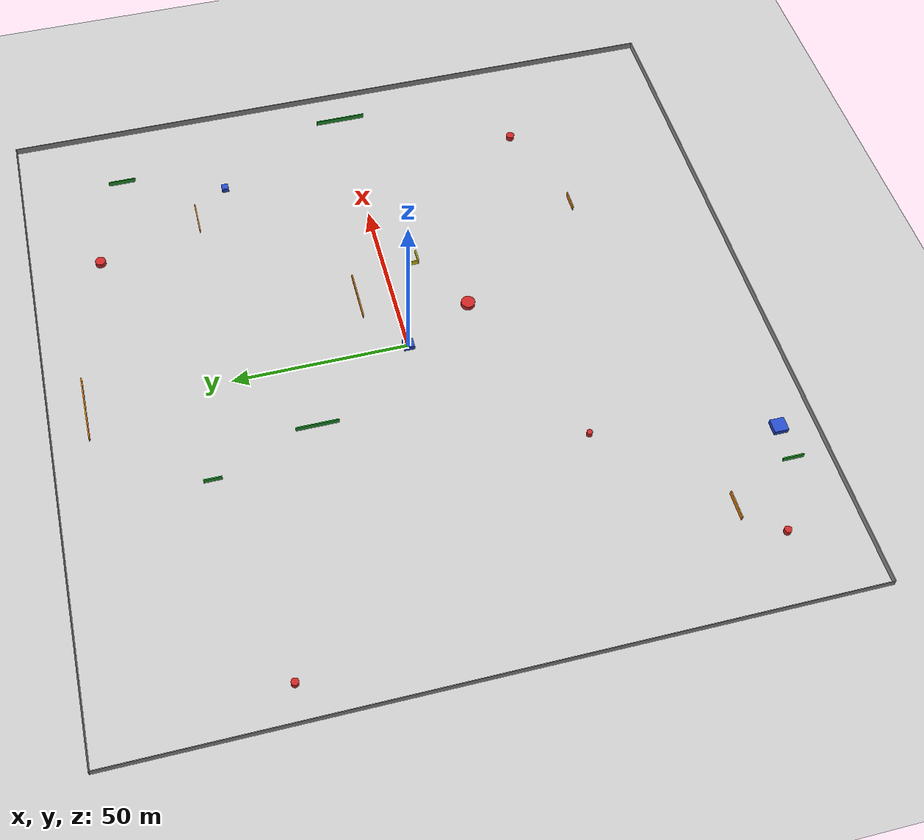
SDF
<?xml version="1.0" ?>
<sdf version="1.6">
  <world name="large_world">

    <!-- ====== 物理引擎 ====== -->
    <physics type="ode">
      <max_step_size>0.001</max_step_size>
      <real_time_factor>1.0</real_time_factor>
      <real_time_update_rate>1000</real_time_update_rate>
    </physics>

    <!-- ====== 光照 ====== -->
    <include>
      <uri>model://sun</uri>
    </include>

    <!-- ====== 地面（200×200m）====== -->
    <model name="ground_plane">
      <static>true</static>
      <link name="link">
        <collision name="collision">
          <geometry>
            <plane>
              <normal>0 0 1</normal>
              <size>200 200</size>
            </plane>
          </geometry>
          <surface>
            <friction>
              <ode>
                <mu>100</mu>
                <mu2>50</mu2>
              </ode>
            </friction>
          </surface>
        </collision>
        <visual name="visual">
          <geometry>
            <plane>
              <normal>0 0 1</normal>
              <size>200 200</size>
            </plane>
          </geometry>
          <material>
            <script>
              <uri>file://media/materials/scripts/gazebo.material</uri>
              <name>Gazebo/Grey</name>
            </script>
          </material>
        </visual>
      </link>
    </model>

    <!-- ====== 边界围墙（±100m，高 2m，厚 0.2m）====== -->

    <model name="wall_north">
      <static>true</static>
      <pose>0 100.1 1 0 0 0</pose>
      <link name="link">
        <collision name="collision"><geometry><box><size>200.4 0.2 2.0</size></box></geometry></collision>
        <visual name="visual">
          <geometry><box><size>200.4 0.2 2.0</size></box></geometry>
          <material><script><uri>file://media/materials/scripts/gazebo.material</uri><name>Gazebo/Grey</name></script></material>
        </visual>
      </link>
    </model>

    <model name="wall_south">
      <static>true</static>
      <pose>0 -100.1 1 0 0 0</pose>
      <link name="link">
        <collision name="collision"><geometry><box><size>200.4 0.2 2.0</size></box></geometry></collision>
        <visual name="visual">
          <geometry><box><size>200.4 0.2 2.0</size></box></geometry>
          <material><script><uri>file://media/materials/scripts/gazebo.material</uri><name>Gazebo/Grey</name></script></material>
        </visual>
      </link>
    </model>

    <model name="wall_east">
      <static>true</static>
      <pose>100.1 0 1 0 0 0</pose>
      <link name="link">
        <collision name="collision"><geometry><box><size>0.2 200.0 2.0</size></box></geometry></collision>
        <visual name="visual">
          <geometry><box><size>0.2 200.0 2.0</size></box></geometry>
          <material><script><uri>file://media/materials/scripts/gazebo.material</uri><name>Gazebo/Grey</name></script></material>
        </visual>
      </link>
    </model>

    <model name="wall_west">
      <static>true</static>
      <pose>-100.1 0 1 0 0 0</pose>
      <link name="link">
        <collision name="collision"><geometry><box><size>0.2 200.0 2.0</size></box></geometry></collision>
        <visual name="visual">
          <geometry><box><size>0.2 200.0 2.0</size></box></geometry>
          <material><script><uri>file://media/materials/scripts/gazebo.material</uri><name>Gazebo/Grey</name></script></material>
        </visual>
      </link>
    </model>

    <!-- ====== 西南区（靠近出生点）====== -->

    <!-- 圆柱 r=1m：(-80, -80) -->
    <model name="cyl_sw_1">
      <static>true</static>
      <pose>-80 -80 0.75 0 0 0</pose>
      <link name="link">
        <collision name="collision"><geometry><cylinder><radius>1.0</radius><length>1.5</length></cylinder></geometry></collision>
        <visual name="visual">
          <geometry><cylinder><radius>1.0</radius><length>1.5</length></cylinder></geometry>
          <material><script><uri>file://media/materials/scripts/gazebo.material</uri><name>Gazebo/Red</name></script></material>
        </visual>
      </link>
    </model>

    <!-- 横墙 8m：(-70, -70) -->
    <model name="wall_h_sw">
      <static>true</static>
      <pose>-70 -70 0.75 0 0 0</pose>
      <link name="link">
        <collision name="collision"><geometry><box><size>8.0 0.3 1.5</size></box></geometry></collision>
        <visual name="visual">
          <geometry><box><size>8.0 0.3 1.5</size></box></geometry>
          <material><script><uri>file://media/materials/scripts/gazebo.material</uri><name>Gazebo/Orange</name></script></material>
        </visual>
      </link>
    </model>

    <!-- 竖墙 6m：(-60, -90) -->
    <model name="wall_v_sw">
      <static>true</static>
      <pose>-60 -90 0.75 0 0 0</pose>
      <link name="link">
        <collision name="collision"><geometry><box><size>0.3 6.0 1.5</size></box></geometry></collision>
        <visual name="visual">
          <geometry><box><size>0.3 6.0 1.5</size></box></geometry>
          <material><script><uri>file://media/materials/scripts/gazebo.material</uri><name>Gazebo/Green</name></script></material>
        </visual>
      </link>
    </model>

    <!-- ====== 中心区 ====== -->

    <!-- 大箱子 3×3m：(0, 0) -->
    <model name="box_center">
      <static>true</static>
      <pose>0 0 0.75 0 0 0</pose>
      <link name="link">
        <collision name="collision"><geometry><box><size>3.0 3.0 1.5</size></box></geometry></collision>
        <visual name="visual">
          <geometry><box><size>3.0 3.0 1.5</size></box></geometry>
          <material><script><uri>file://media/materials/scripts/gazebo.material</uri><name>Gazebo/Blue</name></script></material>
        </visual>
      </link>
    </model>

    <!-- 长横墙 15m：(20, 10) -->
    <model name="wall_h_center">
      <static>true</static>
      <pose>20 10 0.75 0 0 0</pose>
      <link name="link">
        <collision name="collision"><geometry><box><size>15.0 0.3 1.5</size></box></geometry></collision>
        <visual name="visual">
          <geometry><box><size>15.0 0.3 1.5</size></box></geometry>
          <material><script><uri>file://media/materials/scripts/gazebo.material</uri><name>Gazebo/Orange</name></script></material>
        </visual>
      </link>
    </model>

    <!-- 长竖墙 12m：(-20, 30) -->
    <model name="wall_v_center">
      <static>true</static>
      <pose>-20 30 0.75 0 0 0</pose>
      <link name="link">
        <collision name="collision"><geometry><box><size>0.3 12.0 1.5</size></box></geometry></collision>
        <visual name="visual">
          <geometry><box><size>0.3 12.0 1.5</size></box></geometry>
          <material><script><uri>file://media/materials/scripts/gazebo.material</uri><name>Gazebo/Green</name></script></material>
        </visual>
      </link>
    </model>

    <!-- 大圆柱 r=2m：(10, -20) -->
    <model name="cyl_center">
      <static>true</static>
      <pose>10 -20 0.75 0 0 0</pose>
      <link name="link">
        <collision name="collision"><geometry><cylinder><radius>2.0</radius><length>1.5</length></cylinder></geometry></collision>
        <visual name="visual">
          <geometry><cylinder><radius>2.0</radius><length>1.5</length></cylinder></geometry>
          <material><script><uri>file://media/materials/scripts/gazebo.material</uri><name>Gazebo/Red</name></script></material>
        </visual>
      </link>
    </model>

    <!-- L形障碍：(30, -10) -->
    <model name="l_shape">
      <static>true</static>
      <pose>30 -10 0.75 0 0 0</pose>
      <link name="link">
        <!-- 东西臂 -->
        <collision name="col_h"><pose>0 0 0 0 0 0</pose><geometry><box><size>4.0 0.3 1.5</size></box></geometry></collision>
        <visual name="vis_h"><pose>0 0 0 0 0 0</pose><geometry><box><size>4.0 0.3 1.5</size></box></geometry>
          <material><script><uri>file://media/materials/scripts/gazebo.material</uri><name>Gazebo/Yellow</name></script></material>
        </visual>
        <!-- 南北臂 -->
        <collision name="col_v"><pose>-1.85 2.0 0 0 0 0</pose><geometry><box><size>0.3 4.0 1.5</size></box></geometry></collision>
        <visual name="vis_v"><pose>-1.85 2.0 0 0 0 0</pose><geometry><box><size>0.3 4.0 1.5</size></box></geometry>
          <material><script><uri>file://media/materials/scripts/gazebo.material</uri><name>Gazebo/Yellow</name></script></material>
        </visual>
      </link>
    </model>

    <!-- ====== 东北区 ====== -->

    <!-- 横墙 10m：(60, 50) -->
    <model name="wall_h_ne">
      <static>true</static>
      <pose>60 50 0.75 0 0 0</pose>
      <link name="link">
        <collision name="collision"><geometry><box><size>10.0 0.3 1.5</size></box></geometry></collision>
        <visual name="visual">
          <geometry><box><size>10.0 0.3 1.5</size></box></geometry>
          <material><script><uri>file://media/materials/scripts/gazebo.material</uri><name>Gazebo/Orange</name></script></material>
        </visual>
      </link>
    </model>

    <!-- 竖墙 8m：(80, 70) -->
    <model name="wall_v_ne">
      <static>true</static>
      <pose>80 70 0.75 0 0 0</pose>
      <link name="link">
        <collision name="collision"><geometry><box><size>0.3 8.0 1.5</size></box></geometry></collision>
        <visual name="visual">
          <geometry><box><size>0.3 8.0 1.5</size></box></geometry>
          <material><script><uri>file://media/materials/scripts/gazebo.material</uri><name>Gazebo/Green</name></script></material>
        </visual>
      </link>
    </model>

    <!-- 圆柱 r=1.5m：(50, 80) -->
    <model name="cyl_ne">
      <static>true</static>
      <pose>50 80 0.75 0 0 0</pose>
      <link name="link">
        <collision name="collision"><geometry><cylinder><radius>1.5</radius><length>1.5</length></cylinder></geometry></collision>
        <visual name="visual">
          <geometry><cylinder><radius>1.5</radius><length>1.5</length></cylinder></geometry>
          <material><script><uri>file://media/materials/scripts/gazebo.material</uri><name>Gazebo/Red</name></script></material>
        </visual>
      </link>
    </model>

    <!-- 箱子 2×2m：(70, 40) -->
    <model name="box_ne">
      <static>true</static>
      <pose>70 40 0.75 0 0 0</pose>
      <link name="link">
        <collision name="collision"><geometry><box><size>2.0 2.0 1.5</size></box></geometry></collision>
        <visual name="visual">
          <geometry><box><size>2.0 2.0 1.5</size></box></geometry>
          <material><script><uri>file://media/materials/scripts/gazebo.material</uri><name>Gazebo/Blue</name></script></material>
        </visual>
      </link>
    </model>

    <!-- ====== 边缘区 ====== -->

    <!-- 长横墙 20m：(0, 90) 靠近北边界 -->
    <model name="wall_h_north_edge">
      <static>true</static>
      <pose>0 90 0.75 0 0 0</pose>
      <link name="link">
        <collision name="collision"><geometry><box><size>20.0 0.3 1.5</size></box></geometry></collision>
        <visual name="visual">
          <geometry><box><size>20.0 0.3 1.5</size></box></geometry>
          <material><script><uri>file://media/materials/scripts/gazebo.material</uri><name>Gazebo/Orange</name></script></material>
        </visual>
      </link>
    </model>

    <!-- 长竖墙 15m：(90, 0) 靠近东边界 -->
    <model name="wall_v_east_edge">
      <static>true</static>
      <pose>90 0 0.75 0 0 0</pose>
      <link name="link">
        <collision name="collision"><geometry><box><size>0.3 15.0 1.5</size></box></geometry></collision>
        <visual name="visual">
          <geometry><box><size>0.3 15.0 1.5</size></box></geometry>
          <material><script><uri>file://media/materials/scripts/gazebo.material</uri><name>Gazebo/Green</name></script></material>
        </visual>
      </link>
    </model>

    <!-- 圆柱 r=1m：(-90, 50) 靠近西边界 -->
    <model name="cyl_west_edge">
      <static>true</static>
      <pose>-90 50 0.75 0 0 0</pose>
      <link name="link">
        <collision name="collision"><geometry><cylinder><radius>1.0</radius><length>1.5</length></cylinder></geometry></collision>
        <visual name="visual">
          <geometry><cylinder><radius>1.0</radius><length>1.5</length></cylinder></geometry>
          <material><script><uri>file://media/materials/scripts/gazebo.material</uri><name>Gazebo/Red</name></script></material>
        </visual>
      </link>
    </model>

    <!-- 大箱子 4×4m：(-50, -90) 靠近南边界 -->
    <model name="box_south_edge">
      <static>true</static>
      <pose>-50 -90 0.75 0 0 0</pose>
      <link name="link">
        <collision name="collision"><geometry><box><size>4.0 4.0 1.5</size></box></geometry></collision>
        <visual name="visual">
          <geometry><box><size>4.0 4.0 1.5</size></box></geometry>
          <material><script><uri>file://media/materials/scripts/gazebo.material</uri><name>Gazebo/Blue</name></script></material>
        </visual>
      </link>
    </model>

    <!-- ====== 额外分散障碍 ====== -->

    <!-- 圆柱 r=0.8m：(-40, -40) -->
    <model name="cyl_mid_sw">
      <static>true</static>
      <pose>-40 -40 0.75 0 0 0</pose>
      <link name="link">
        <collision name="collision"><geometry><cylinder><radius>0.8</radius><length>1.5</length></cylinder></geometry></collision>
        <visual name="visual">
          <geometry><cylinder><radius>0.8</radius><length>1.5</length></cylinder></geometry>
          <material><script><uri>file://media/materials/scripts/gazebo.material</uri><name>Gazebo/Red</name></script></material>
        </visual>
      </link>
    </model>

    <!-- 横墙 6m：(40, -60) -->
    <model name="wall_h_se">
      <static>true</static>
      <pose>40 -60 0.75 0 0 0</pose>
      <link name="link">
        <collision name="collision"><geometry><box><size>6.0 0.3 1.5</size></box></geometry></collision>
        <visual name="visual">
          <geometry><box><size>6.0 0.3 1.5</size></box></geometry>
          <material><script><uri>file://media/materials/scripts/gazebo.material</uri><name>Gazebo/Orange</name></script></material>
        </visual>
      </link>
    </model>

    <!-- 竖墙 5m：(-30, 60) -->
    <model name="wall_v_nw">
      <static>true</static>
      <pose>-30 60 0.75 0 0 0</pose>
      <link name="link">
        <collision name="collision"><geometry><box><size>0.3 5.0 1.5</size></box></geometry></collision>
        <visual name="visual">
          <geometry><box><size>0.3 5.0 1.5</size></box></geometry>
          <material><script><uri>file://media/materials/scripts/gazebo.material</uri><name>Gazebo/Green</name></script></material>
        </visual>
      </link>
    </model>

    <!-- 圆柱 r=1.2m：(70, -50) -->
    <model name="cyl_se">
      <static>true</static>
      <pose>70 -50 0.75 0 0 0</pose>
      <link name="link">
        <collision name="collision"><geometry><cylinder><radius>1.2</radius><length>1.5</length></cylinder></geometry></collision>
        <visual name="visual">
          <geometry><cylinder><radius>1.2</radius><length>1.5</length></cylinder></geometry>
          <material><script><uri>file://media/materials/scripts/gazebo.material</uri><name>Gazebo/Red</name></script></material>
        </visual>
      </link>
    </model>

  </world>
</sdf>
